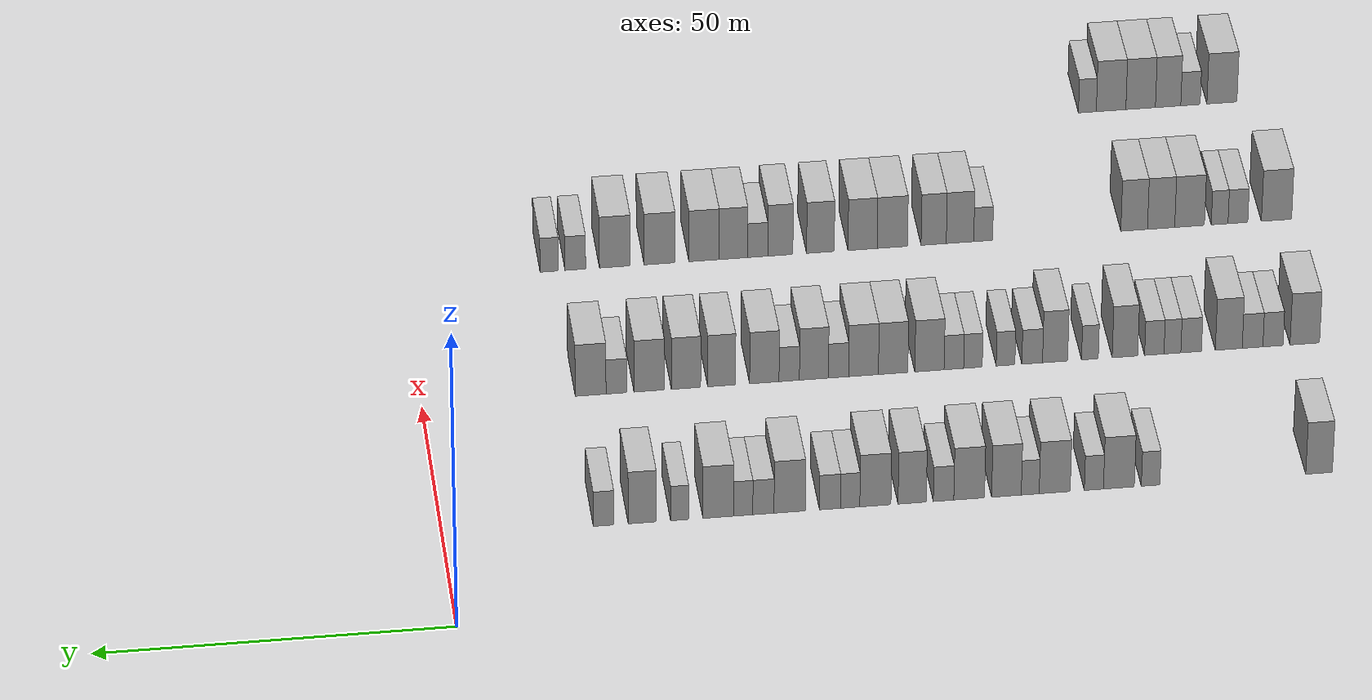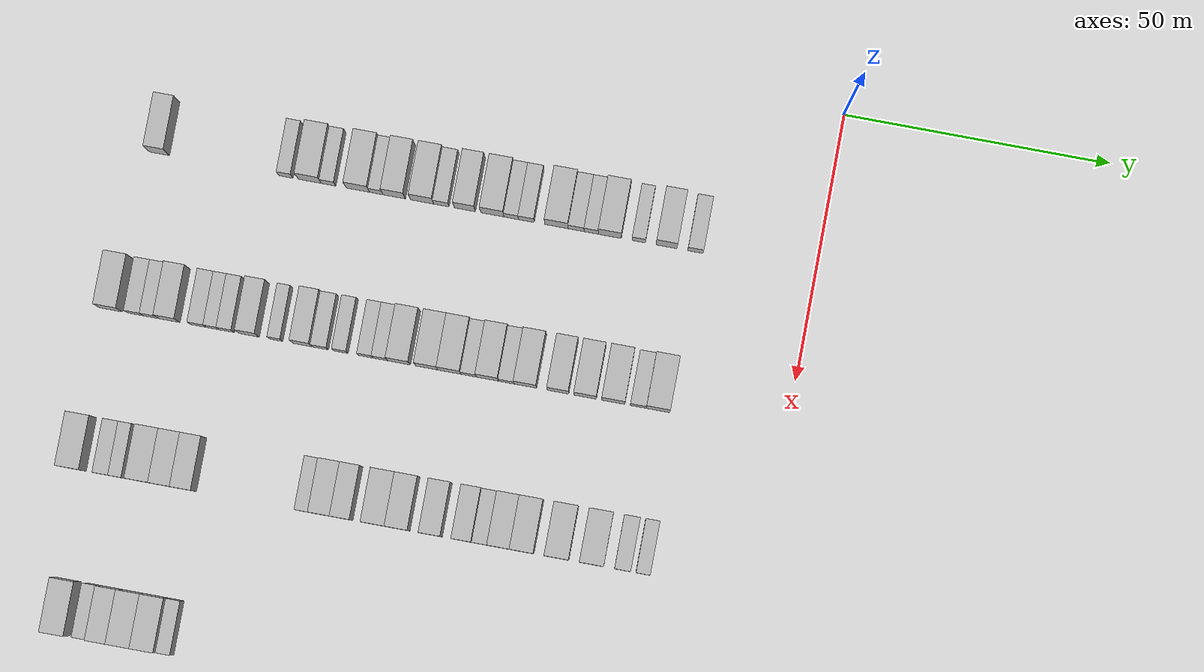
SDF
<sdf version="1.6">
 <world name="default">
  <model name="building_88">
   <static>1</static>
   <pose>25.0000 -122.9435 0 0.000000 0.000000 0.000000</pose>
   <link name="link">
    <pose>0 0 4.50 0 0 0</pose>
    <collision name="collision"><geometry><box><size>10.0000 3.7589 9.0000</size></box></geometry></collision>
    <visual name="visual">
     <cast_shadows>0</cast_shadows>
     <geometry><box><size>10.0000 3.7589 9.0000</size></box></geometry>
     <material>
      <script>
       <uri>model://HANNAS_wall/materials/scripts</uri>
       <uri>model://HANNAS_wall/materials/textures</uri>
       <name>vrc/HANNAS_wall</name>
      </script>
     </material>
    </visual>
   </link>
  </model>
  <model name="building_89">
   <static>1</static>
   <pose>25.0000 -99.1416 0 0.000000 0.000000 0.000000</pose>
   <link name="link">
    <pose>0 0 3.00 0 0 0</pose>
    <collision name="collision"><geometry><box><size>10.0000 2.6150 6.0000</size></box></geometry></collision>
    <visual name="visual">
     <cast_shadows>0</cast_shadows>
     <geometry><box><size>10.0000 2.6150 6.0000</size></box></geometry>
     <material>
      <script>
       <uri>model://HANNAS_wall/materials/scripts</uri>
       <uri>model://HANNAS_wall/materials/textures</uri>
       <name>vrc/HANNAS_wall</name>
      </script>
     </material>
    </visual>
   </link>
  </model>
  <model name="building_90">
   <static>1</static>
   <pose>25.0000 -94.6599 0 0.000000 0.000000 0.000000</pose>
   <link name="link">
    <pose>0 0 4.50 0 0 0</pose>
    <collision name="collision"><geometry><box><size>10.0000 4.3484 9.0000</size></box></geometry></collision>
    <visual name="visual">
     <cast_shadows>0</cast_shadows>
     <geometry><box><size>10.0000 4.3484 9.0000</size></box></geometry>
     <material>
      <script>
       <uri>model://HANNAS_wall/materials/scripts</uri>
       <uri>model://HANNAS_wall/materials/textures</uri>
       <name>vrc/HANNAS_wall</name>
      </script>
     </material>
    </visual>
   </link>
  </model>
  <model name="building_91">
   <static>1</static>
   <pose>25.0000 -91.1423 0 0.000000 0.000000 0.000000</pose>
   <link name="link">
    <pose>0 0 3.00 0 0 0</pose>
    <collision name="collision"><geometry><box><size>10.0000 2.6867 6.0000</size></box></geometry></collision>
    <visual name="visual">
     <cast_shadows>0</cast_shadows>
     <geometry><box><size>10.0000 2.6867 6.0000</size></box></geometry>
     <material>
      <script>
       <uri>model://HANNAS_wall/materials/scripts</uri>
       <uri>model://HANNAS_wall/materials/textures</uri>
       <name>vrc/HANNAS_wall</name>
      </script>
     </material>
    </visual>
   </link>
  </model>
  <model name="building_92">
   <static>1</static>
   <pose>25.0000 -85.6182 0 0.000000 0.000000 0.000000</pose>
   <link name="link">
    <pose>0 0 4.50 0 0 0</pose>
    <collision name="collision"><geometry><box><size>10.0000 4.3616 9.0000</size></box></geometry></collision>
    <visual name="visual">
     <cast_shadows>0</cast_shadows>
     <geometry><box><size>10.0000 4.3616 9.0000</size></box></geometry>
     <material>
      <script>
       <uri>model://HANNAS_wall/materials/scripts</uri>
       <uri>model://HANNAS_wall/materials/textures</uri>
       <name>vrc/HANNAS_wall</name>
      </script>
     </material>
    </visual>
   </link>
  </model>
  <model name="building_93">
   <static>1</static>
   <pose>25.0000 -82.1745 0 0.000000 0.000000 0.000000</pose>
   <link name="link">
    <pose>0 0 3.00 0 0 0</pose>
    <collision name="collision"><geometry><box><size>10.0000 2.5257 6.0000</size></box></geometry></collision>
    <visual name="visual">
     <cast_shadows>0</cast_shadows>
     <geometry><box><size>10.0000 2.5257 6.0000</size></box></geometry>
     <material>
      <script>
       <uri>model://HANNAS_wall/materials/scripts</uri>
       <uri>model://HANNAS_wall/materials/textures</uri>
       <name>vrc/HANNAS_wall</name>
      </script>
     </material>
    </visual>
   </link>
  </model>
  <model name="building_94">
   <static>1</static>
   <pose>25.0000 -78.8266 0 0.000000 0.000000 0.000000</pose>
   <link name="link">
    <pose>0 0 4.50 0 0 0</pose>
    <collision name="collision"><geometry><box><size>10.0000 4.1699 9.0000</size></box></geometry></collision>
    <visual name="visual">
     <cast_shadows>0</cast_shadows>
     <geometry><box><size>10.0000 4.1699 9.0000</size></box></geometry>
     <material>
      <script>
       <uri>model://HANNAS_wall/materials/scripts</uri>
       <uri>model://HANNAS_wall/materials/textures</uri>
       <name>vrc/HANNAS_wall</name>
      </script>
     </material>
    </visual>
   </link>
  </model>
  <model name="building_95">
   <static>1</static>
   <pose>25.0000 -73.5830 0 0.000000 0.000000 0.000000</pose>
   <link name="link">
    <pose>0 0 4.50 0 0 0</pose>
    <collision name="collision"><geometry><box><size>10.0000 4.3174 9.0000</size></box></geometry></collision>
    <visual name="visual">
     <cast_shadows>0</cast_shadows>
     <geometry><box><size>10.0000 4.3174 9.0000</size></box></geometry>
     <material>
      <script>
       <uri>model://HANNAS_wall/materials/scripts</uri>
       <uri>model://HANNAS_wall/materials/textures</uri>
       <name>vrc/HANNAS_wall</name>
      </script>
     </material>
    </visual>
   </link>
  </model>
  <model name="building_96">
   <static>1</static>
   <pose>25.0000 -69.9888 0 0.000000 0.000000 0.000000</pose>
   <link name="link">
    <pose>0 0 3.00 0 0 0</pose>
    <collision name="collision"><geometry><box><size>10.0000 2.8709 6.0000</size></box></geometry></collision>
    <visual name="visual">
     <cast_shadows>0</cast_shadows>
     <geometry><box><size>10.0000 2.8709 6.0000</size></box></geometry>
     <material>
      <script>
       <uri>model://HANNAS_wall/materials/scripts</uri>
       <uri>model://HANNAS_wall/materials/textures</uri>
       <name>vrc/HANNAS_wall</name>
      </script>
     </material>
    </visual>
   </link>
  </model>
  <model name="building_97">
   <static>1</static>
   <pose>25.0000 -65.5754 0 0.000000 0.000000 0.000000</pose>
   <link name="link">
    <pose>0 0 4.50 0 0 0</pose>
    <collision name="collision"><geometry><box><size>10.0000 3.9560 9.0000</size></box></geometry></collision>
    <visual name="visual">
     <cast_shadows>0</cast_shadows>
     <geometry><box><size>10.0000 3.9560 9.0000</size></box></geometry>
     <material>
      <script>
       <uri>model://HANNAS_wall/materials/scripts</uri>
       <uri>model://HANNAS_wall/materials/textures</uri>
       <name>vrc/HANNAS_wall</name>
      </script>
     </material>
    </visual>
   </link>
  </model>
  <model name="building_98">
   <static>1</static>
   <pose>25.0000 -60.4146 0 0.000000 0.000000 0.000000</pose>
   <link name="link">
    <pose>0 0 4.50 0 0 0</pose>
    <collision name="collision"><geometry><box><size>10.0000 4.3657 9.0000</size></box></geometry></collision>
    <visual name="visual">
     <cast_shadows>0</cast_shadows>
     <geometry><box><size>10.0000 4.3657 9.0000</size></box></geometry>
     <material>
      <script>
       <uri>model://HANNAS_wall/materials/scripts</uri>
       <uri>model://HANNAS_wall/materials/textures</uri>
       <name>vrc/HANNAS_wall</name>
      </script>
     </material>
    </visual>
   </link>
  </model>
  <model name="building_99">
   <static>1</static>
   <pose>25.0000 -56.8833 0 0.000000 0.000000 0.000000</pose>
   <link name="link">
    <pose>0 0 3.00 0 0 0</pose>
    <collision name="collision"><geometry><box><size>10.0000 2.6968 6.0000</size></box></geometry></collision>
    <visual name="visual">
     <cast_shadows>0</cast_shadows>
     <geometry><box><size>10.0000 2.6968 6.0000</size></box></geometry>
     <material>
      <script>
       <uri>model://HANNAS_wall/materials/scripts</uri>
       <uri>model://HANNAS_wall/materials/textures</uri>
       <name>vrc/HANNAS_wall</name>
      </script>
     </material>
    </visual>
   </link>
  </model>
  <model name="building_100">
   <static>1</static>
   <pose>25.0000 -54.0627 0 0.000000 0.000000 0.000000</pose>
   <link name="link">
    <pose>0 0 3.00 0 0 0</pose>
    <collision name="collision"><geometry><box><size>10.0000 2.9444 6.0000</size></box></geometry></collision>
    <visual name="visual">
     <cast_shadows>0</cast_shadows>
     <geometry><box><size>10.0000 2.9444 6.0000</size></box></geometry>
     <material>
      <script>
       <uri>model://HANNAS_wall/materials/scripts</uri>
       <uri>model://HANNAS_wall/materials/textures</uri>
       <name>vrc/HANNAS_wall</name>
      </script>
     </material>
    </visual>
   </link>
  </model>
  <model name="building_101">
   <static>1</static>
   <pose>25.0000 -48.4045 0 0.000000 0.000000 0.000000</pose>
   <link name="link">
    <pose>0 0 4.50 0 0 0</pose>
    <collision name="collision"><geometry><box><size>10.0000 4.3722 9.0000</size></box></geometry></collision>
    <visual name="visual">
     <cast_shadows>0</cast_shadows>
     <geometry><box><size>10.0000 4.3722 9.0000</size></box></geometry>
     <material>
      <script>
       <uri>model://HANNAS_wall/materials/scripts</uri>
       <uri>model://HANNAS_wall/materials/textures</uri>
       <name>vrc/HANNAS_wall</name>
      </script>
     </material>
    </visual>
   </link>
  </model>
  <model name="building_102">
   <static>1</static>
   <pose>25.0000 -44.7349 0 0.000000 0.000000 0.000000</pose>
   <link name="link">
    <pose>0 0 3.00 0 0 0</pose>
    <collision name="collision"><geometry><box><size>10.0000 2.9670 6.0000</size></box></geometry></collision>
    <visual name="visual">
     <cast_shadows>0</cast_shadows>
     <geometry><box><size>10.0000 2.9670 6.0000</size></box></geometry>
     <material>
      <script>
       <uri>model://HANNAS_wall/materials/scripts</uri>
       <uri>model://HANNAS_wall/materials/textures</uri>
       <name>vrc/HANNAS_wall</name>
      </script>
     </material>
    </visual>
   </link>
  </model>
  <model name="building_103">
   <static>1</static>
   <pose>25.0000 -41.9205 0 0.000000 0.000000 0.000000</pose>
   <link name="link">
    <pose>0 0 3.00 0 0 0</pose>
    <collision name="collision"><geometry><box><size>10.0000 2.6617 6.0000</size></box></geometry></collision>
    <visual name="visual">
     <cast_shadows>0</cast_shadows>
     <geometry><box><size>10.0000 2.6617 6.0000</size></box></geometry>
     <material>
      <script>
       <uri>model://HANNAS_wall/materials/scripts</uri>
       <uri>model://HANNAS_wall/materials/textures</uri>
       <name>vrc/HANNAS_wall</name>
      </script>
     </material>
    </visual>
   </link>
  </model>
  <model name="building_104">
   <static>1</static>
   <pose>25.0000 -38.4325 0 0.000000 0.000000 0.000000</pose>
   <link name="link">
    <pose>0 0 4.50 0 0 0</pose>
    <collision name="collision"><geometry><box><size>10.0000 4.3142 9.0000</size></box></geometry></collision>
    <visual name="visual">
     <cast_shadows>0</cast_shadows>
     <geometry><box><size>10.0000 4.3142 9.0000</size></box></geometry>
     <material>
      <script>
       <uri>model://HANNAS_wall/materials/scripts</uri>
       <uri>model://HANNAS_wall/materials/textures</uri>
       <name>vrc/HANNAS_wall</name>
      </script>
     </material>
    </visual>
   </link>
  </model>
  <model name="building_105">
   <static>1</static>
   <pose>25.0000 -33.0181 0 0.000000 0.000000 0.000000</pose>
   <link name="link">
    <pose>0 0 3.00 0 0 0</pose>
    <collision name="collision"><geometry><box><size>10.0000 2.5146 6.0000</size></box></geometry></collision>
    <visual name="visual">
     <cast_shadows>0</cast_shadows>
     <geometry><box><size>10.0000 2.5146 6.0000</size></box></geometry>
     <material>
      <script>
       <uri>model://HANNAS_wall/materials/scripts</uri>
       <uri>model://HANNAS_wall/materials/textures</uri>
       <name>vrc/HANNAS_wall</name>
      </script>
     </material>
    </visual>
   </link>
  </model>
  <model name="building_106">
   <static>1</static>
   <pose>25.0000 -27.7983 0 0.000000 0.000000 0.000000</pose>
   <link name="link">
    <pose>0 0 4.50 0 0 0</pose>
    <collision name="collision"><geometry><box><size>10.0000 3.9252 9.0000</size></box></geometry></collision>
    <visual name="visual">
     <cast_shadows>0</cast_shadows>
     <geometry><box><size>10.0000 3.9252 9.0000</size></box></geometry>
     <material>
      <script>
       <uri>model://HANNAS_wall/materials/scripts</uri>
       <uri>model://HANNAS_wall/materials/textures</uri>
       <name>vrc/HANNAS_wall</name>
      </script>
     </material>
    </visual>
   </link>
  </model>
  <model name="building_107">
   <static>1</static>
   <pose>25.0000 -22.4009 0 0.000000 0.000000 0.000000</pose>
   <link name="link">
    <pose>0 0 3.00 0 0 0</pose>
    <collision name="collision"><geometry><box><size>10.0000 2.8695 6.0000</size></box></geometry></collision>
    <visual name="visual">
     <cast_shadows>0</cast_shadows>
     <geometry><box><size>10.0000 2.8695 6.0000</size></box></geometry>
     <material>
      <script>
       <uri>model://HANNAS_wall/materials/scripts</uri>
       <uri>model://HANNAS_wall/materials/textures</uri>
       <name>vrc/HANNAS_wall</name>
      </script>
     </material>
    </visual>
   </link>
  </model>
  <model name="building_302">
   <static>1</static>
   <pose>55.0000 -126.1772 0 0.000000 0.000000 0.000000</pose>
   <link name="link">
    <pose>0 0 4.50 0 0 0</pose>
    <collision name="collision"><geometry><box><size>10.0000 4.2610 9.0000</size></box></geometry></collision>
    <visual name="visual">
     <cast_shadows>0</cast_shadows>
     <geometry><box><size>10.0000 4.2610 9.0000</size></box></geometry>
     <material>
      <script>
       <uri>model://HANNAS_wall/materials/scripts</uri>
       <uri>model://HANNAS_wall/materials/textures</uri>
       <name>vrc/HANNAS_wall</name>
      </script>
     </material>
    </visual>
   </link>
  </model>
  <model name="building_303">
   <static>1</static>
   <pose>55.0000 -121.5906 0 0.000000 0.000000 0.000000</pose>
   <link name="link">
    <pose>0 0 3.00 0 0 0</pose>
    <collision name="collision"><geometry><box><size>10.0000 2.9123 6.0000</size></box></geometry></collision>
    <visual name="visual">
     <cast_shadows>0</cast_shadows>
     <geometry><box><size>10.0000 2.9123 6.0000</size></box></geometry>
     <material>
      <script>
       <uri>model://HANNAS_wall/materials/scripts</uri>
       <uri>model://HANNAS_wall/materials/textures</uri>
       <name>vrc/HANNAS_wall</name>
      </script>
     </material>
    </visual>
   </link>
  </model>
  <model name="building_304">
   <static>1</static>
   <pose>55.0000 -118.6437 0 0.000000 0.000000 0.000000</pose>
   <link name="link">
    <pose>0 0 3.00 0 0 0</pose>
    <collision name="collision"><geometry><box><size>10.0000 2.9813 6.0000</size></box></geometry></collision>
    <visual name="visual">
     <cast_shadows>0</cast_shadows>
     <geometry><box><size>10.0000 2.9813 6.0000</size></box></geometry>
     <material>
      <script>
       <uri>model://HANNAS_wall/materials/scripts</uri>
       <uri>model://HANNAS_wall/materials/textures</uri>
       <name>vrc/HANNAS_wall</name>
      </script>
     </material>
    </visual>
   </link>
  </model>
  <model name="building_305">
   <static>1</static>
   <pose>55.0000 -115.2179 0 0.000000 0.000000 0.000000</pose>
   <link name="link">
    <pose>0 0 4.50 0 0 0</pose>
    <collision name="collision"><geometry><box><size>10.0000 3.8702 9.0000</size></box></geometry></collision>
    <visual name="visual">
     <cast_shadows>0</cast_shadows>
     <geometry><box><size>10.0000 3.8702 9.0000</size></box></geometry>
     <material>
      <script>
       <uri>model://HANNAS_wall/materials/scripts</uri>
       <uri>model://HANNAS_wall/materials/textures</uri>
       <name>vrc/HANNAS_wall</name>
      </script>
     </material>
    </visual>
   </link>
  </model>
  <model name="building_306">
   <static>1</static>
   <pose>55.0000 -109.8008 0 0.000000 0.000000 0.000000</pose>
   <link name="link">
    <pose>0 0 3.00 0 0 0</pose>
    <collision name="collision"><geometry><box><size>10.0000 2.9640 6.0000</size></box></geometry></collision>
    <visual name="visual">
     <cast_shadows>0</cast_shadows>
     <geometry><box><size>10.0000 2.9640 6.0000</size></box></geometry>
     <material>
      <script>
       <uri>model://HANNAS_wall/materials/scripts</uri>
       <uri>model://HANNAS_wall/materials/textures</uri>
       <name>vrc/HANNAS_wall</name>
      </script>
     </material>
    </visual>
   </link>
  </model>
  <model name="building_307">
   <static>1</static>
   <pose>55.0000 -107.1058 0 0.000000 0.000000 0.000000</pose>
   <link name="link">
    <pose>0 0 3.00 0 0 0</pose>
    <collision name="collision"><geometry><box><size>10.0000 2.4261 6.0000</size></box></geometry></collision>
    <visual name="visual">
     <cast_shadows>0</cast_shadows>
     <geometry><box><size>10.0000 2.4261 6.0000</size></box></geometry>
     <material>
      <script>
       <uri>model://HANNAS_wall/materials/scripts</uri>
       <uri>model://HANNAS_wall/materials/textures</uri>
       <name>vrc/HANNAS_wall</name>
      </script>
     </material>
    </visual>
   </link>
  </model>
  <model name="building_308">
   <static>1</static>
   <pose>55.0000 -104.5015 0 0.000000 0.000000 0.000000</pose>
   <link name="link">
    <pose>0 0 3.00 0 0 0</pose>
    <collision name="collision"><geometry><box><size>10.0000 2.7825 6.0000</size></box></geometry></collision>
    <visual name="visual">
     <cast_shadows>0</cast_shadows>
     <geometry><box><size>10.0000 2.7825 6.0000</size></box></geometry>
     <material>
      <script>
       <uri>model://HANNAS_wall/materials/scripts</uri>
       <uri>model://HANNAS_wall/materials/textures</uri>
       <name>vrc/HANNAS_wall</name>
      </script>
     </material>
    </visual>
   </link>
  </model>
  <model name="building_309">
   <static>1</static>
   <pose>55.0000 -100.2788 0 0.000000 0.000000 0.000000</pose>
   <link name="link">
    <pose>0 0 4.50 0 0 0</pose>
    <collision name="collision"><geometry><box><size>10.0000 3.6630 9.0000</size></box></geometry></collision>
    <visual name="visual">
     <cast_shadows>0</cast_shadows>
     <geometry><box><size>10.0000 3.6630 9.0000</size></box></geometry>
     <material>
      <script>
       <uri>model://HANNAS_wall/materials/scripts</uri>
       <uri>model://HANNAS_wall/materials/textures</uri>
       <name>vrc/HANNAS_wall</name>
      </script>
     </material>
    </visual>
   </link>
  </model>
  <model name="building_310">
   <static>1</static>
   <pose>55.0000 -95.2465 0 0.000000 0.000000 0.000000</pose>
   <link name="link">
    <pose>0 0 3.00 0 0 0</pose>
    <collision name="collision"><geometry><box><size>10.0000 2.4015 6.0000</size></box></geometry></collision>
    <visual name="visual">
     <cast_shadows>0</cast_shadows>
     <geometry><box><size>10.0000 2.4015 6.0000</size></box></geometry>
     <material>
      <script>
       <uri>model://HANNAS_wall/materials/scripts</uri>
       <uri>model://HANNAS_wall/materials/textures</uri>
       <name>vrc/HANNAS_wall</name>
      </script>
     </material>
    </visual>
   </link>
  </model>
  <model name="building_311">
   <static>1</static>
   <pose>55.0000 -90.2434 0 0.000000 0.000000 0.000000</pose>
   <link name="link">
    <pose>0 0 4.50 0 0 0</pose>
    <collision name="collision"><geometry><box><size>10.0000 3.6049 9.0000</size></box></geometry></collision>
    <visual name="visual">
     <cast_shadows>0</cast_shadows>
     <geometry><box><size>10.0000 3.6049 9.0000</size></box></geometry>
     <material>
      <script>
       <uri>model://HANNAS_wall/materials/scripts</uri>
       <uri>model://HANNAS_wall/materials/textures</uri>
       <name>vrc/HANNAS_wall</name>
      </script>
     </material>
    </visual>
   </link>
  </model>
  <model name="building_312">
   <static>1</static>
   <pose>55.0000 -86.9605 0 0.000000 0.000000 0.000000</pose>
   <link name="link">
    <pose>0 0 3.00 0 0 0</pose>
    <collision name="collision"><geometry><box><size>10.0000 2.9609 6.0000</size></box></geometry></collision>
    <visual name="visual">
     <cast_shadows>0</cast_shadows>
     <geometry><box><size>10.0000 2.9609 6.0000</size></box></geometry>
     <material>
      <script>
       <uri>model://HANNAS_wall/materials/scripts</uri>
       <uri>model://HANNAS_wall/materials/textures</uri>
       <name>vrc/HANNAS_wall</name>
      </script>
     </material>
    </visual>
   </link>
  </model>
  <model name="building_313">
   <static>1</static>
   <pose>55.0000 -83.1413 0 0.000000 0.000000 0.000000</pose>
   <link name="link">
    <pose>0 0 3.00 0 0 0</pose>
    <collision name="collision"><geometry><box><size>10.0000 2.6775 6.0000</size></box></geometry></collision>
    <visual name="visual">
     <cast_shadows>0</cast_shadows>
     <geometry><box><size>10.0000 2.6775 6.0000</size></box></geometry>
     <material>
      <script>
       <uri>model://HANNAS_wall/materials/scripts</uri>
       <uri>model://HANNAS_wall/materials/textures</uri>
       <name>vrc/HANNAS_wall</name>
      </script>
     </material>
    </visual>
   </link>
  </model>
  <model name="building_314">
   <static>1</static>
   <pose>55.0000 -78.4706 0 0.000000 0.000000 0.000000</pose>
   <link name="link">
    <pose>0 0 3.00 0 0 0</pose>
    <collision name="collision"><geometry><box><size>10.0000 2.6639 6.0000</size></box></geometry></collision>
    <visual name="visual">
     <cast_shadows>0</cast_shadows>
     <geometry><box><size>10.0000 2.6639 6.0000</size></box></geometry>
     <material>
      <script>
       <uri>model://HANNAS_wall/materials/scripts</uri>
       <uri>model://HANNAS_wall/materials/textures</uri>
       <name>vrc/HANNAS_wall</name>
      </script>
     </material>
    </visual>
   </link>
  </model>
  <model name="building_315">
   <static>1</static>
   <pose>55.0000 -75.7348 0 0.000000 0.000000 0.000000</pose>
   <link name="link">
    <pose>0 0 3.00 0 0 0</pose>
    <collision name="collision"><geometry><box><size>10.0000 2.8076 6.0000</size></box></geometry></collision>
    <visual name="visual">
     <cast_shadows>0</cast_shadows>
     <geometry><box><size>10.0000 2.8076 6.0000</size></box></geometry>
     <material>
      <script>
       <uri>model://HANNAS_wall/materials/scripts</uri>
       <uri>model://HANNAS_wall/materials/textures</uri>
       <name>vrc/HANNAS_wall</name>
      </script>
     </material>
    </visual>
   </link>
  </model>
  <model name="building_316">
   <static>1</static>
   <pose>55.0000 -72.2374 0 0.000000 0.000000 0.000000</pose>
   <link name="link">
    <pose>0 0 4.50 0 0 0</pose>
    <collision name="collision"><geometry><box><size>10.0000 4.1872 9.0000</size></box></geometry></collision>
    <visual name="visual">
     <cast_shadows>0</cast_shadows>
     <geometry><box><size>10.0000 4.1872 9.0000</size></box></geometry>
     <material>
      <script>
       <uri>model://HANNAS_wall/materials/scripts</uri>
       <uri>model://HANNAS_wall/materials/textures</uri>
       <name>vrc/HANNAS_wall</name>
      </script>
     </material>
    </visual>
   </link>
  </model>
  <model name="building_317">
   <static>1</static>
   <pose>55.0000 -67.0415 0 0.000000 0.000000 0.000000</pose>
   <link name="link">
    <pose>0 0 4.50 0 0 0</pose>
    <collision name="collision"><geometry><box><size>10.0000 4.2046 9.0000</size></box></geometry></collision>
    <visual name="visual">
     <cast_shadows>0</cast_shadows>
     <geometry><box><size>10.0000 4.2046 9.0000</size></box></geometry>
     <material>
      <script>
       <uri>model://HANNAS_wall/materials/scripts</uri>
       <uri>model://HANNAS_wall/materials/textures</uri>
       <name>vrc/HANNAS_wall</name>
      </script>
     </material>
    </visual>
   </link>
  </model>
  <model name="building_318">
   <static>1</static>
   <pose>55.0000 -62.8037 0 0.000000 0.000000 0.000000</pose>
   <link name="link">
    <pose>0 0 4.50 0 0 0</pose>
    <collision name="collision"><geometry><box><size>10.0000 4.2711 9.0000</size></box></geometry></collision>
    <visual name="visual">
     <cast_shadows>0</cast_shadows>
     <geometry><box><size>10.0000 4.2711 9.0000</size></box></geometry>
     <material>
      <script>
       <uri>model://HANNAS_wall/materials/scripts</uri>
       <uri>model://HANNAS_wall/materials/textures</uri>
       <name>vrc/HANNAS_wall</name>
      </script>
     </material>
    </visual>
   </link>
  </model>
  <model name="building_319">
   <static>1</static>
   <pose>55.0000 -59.2322 0 0.000000 0.000000 0.000000</pose>
   <link name="link">
    <pose>0 0 3.00 0 0 0</pose>
    <collision name="collision"><geometry><box><size>10.0000 2.8719 6.0000</size></box></geometry></collision>
    <visual name="visual">
     <cast_shadows>0</cast_shadows>
     <geometry><box><size>10.0000 2.8719 6.0000</size></box></geometry>
     <material>
      <script>
       <uri>model://HANNAS_wall/materials/scripts</uri>
       <uri>model://HANNAS_wall/materials/textures</uri>
       <name>vrc/HANNAS_wall</name>
      </script>
     </material>
    </visual>
   </link>
  </model>
  <model name="building_320">
   <static>1</static>
   <pose>55.0000 -55.7255 0 0.000000 0.000000 0.000000</pose>
   <link name="link">
    <pose>0 0 4.50 0 0 0</pose>
    <collision name="collision"><geometry><box><size>10.0000 4.1416 9.0000</size></box></geometry></collision>
    <visual name="visual">
     <cast_shadows>0</cast_shadows>
     <geometry><box><size>10.0000 4.1416 9.0000</size></box></geometry>
     <material>
      <script>
       <uri>model://HANNAS_wall/materials/scripts</uri>
       <uri>model://HANNAS_wall/materials/textures</uri>
       <name>vrc/HANNAS_wall</name>
      </script>
     </material>
    </visual>
   </link>
  </model>
  <model name="building_321">
   <static>1</static>
   <pose>55.0000 -52.1995 0 0.000000 0.000000 0.000000</pose>
   <link name="link">
    <pose>0 0 3.00 0 0 0</pose>
    <collision name="collision"><geometry><box><size>10.0000 2.9104 6.0000</size></box></geometry></collision>
    <visual name="visual">
     <cast_shadows>0</cast_shadows>
     <geometry><box><size>10.0000 2.9104 6.0000</size></box></geometry>
     <material>
      <script>
       <uri>model://HANNAS_wall/materials/scripts</uri>
       <uri>model://HANNAS_wall/materials/textures</uri>
       <name>vrc/HANNAS_wall</name>
      </script>
     </material>
    </visual>
   </link>
  </model>
  <model name="building_322">
   <static>1</static>
   <pose>55.0000 -48.6486 0 0.000000 0.000000 0.000000</pose>
   <link name="link">
    <pose>0 0 4.50 0 0 0</pose>
    <collision name="collision"><geometry><box><size>10.0000 4.1912 9.0000</size></box></geometry></collision>
    <visual name="visual">
     <cast_shadows>0</cast_shadows>
     <geometry><box><size>10.0000 4.1912 9.0000</size></box></geometry>
     <material>
      <script>
       <uri>model://HANNAS_wall/materials/scripts</uri>
       <uri>model://HANNAS_wall/materials/textures</uri>
       <name>vrc/HANNAS_wall</name>
      </script>
     </material>
    </visual>
   </link>
  </model>
  <model name="building_323">
   <static>1</static>
   <pose>55.0000 -42.5649 0 0.000000 0.000000 0.000000</pose>
   <link name="link">
    <pose>0 0 4.50 0 0 0</pose>
    <collision name="collision"><geometry><box><size>10.0000 3.9762 9.0000</size></box></geometry></collision>
    <visual name="visual">
     <cast_shadows>0</cast_shadows>
     <geometry><box><size>10.0000 3.9762 9.0000</size></box></geometry>
     <material>
      <script>
       <uri>model://HANNAS_wall/materials/scripts</uri>
       <uri>model://HANNAS_wall/materials/textures</uri>
       <name>vrc/HANNAS_wall</name>
      </script>
     </material>
    </visual>
   </link>
  </model>
  <model name="building_324">
   <static>1</static>
   <pose>55.0000 -37.4912 0 0.000000 0.000000 0.000000</pose>
   <link name="link">
    <pose>0 0 4.50 0 0 0</pose>
    <collision name="collision"><geometry><box><size>10.0000 4.1710 9.0000</size></box></geometry></collision>
    <visual name="visual">
     <cast_shadows>0</cast_shadows>
     <geometry><box><size>10.0000 4.1710 9.0000</size></box></geometry>
     <material>
      <script>
       <uri>model://HANNAS_wall/materials/scripts</uri>
       <uri>model://HANNAS_wall/materials/textures</uri>
       <name>vrc/HANNAS_wall</name>
      </script>
     </material>
    </visual>
   </link>
  </model>
  <model name="building_325">
   <static>1</static>
   <pose>55.0000 -32.2473 0 0.000000 0.000000 0.000000</pose>
   <link name="link">
    <pose>0 0 4.50 0 0 0</pose>
    <collision name="collision"><geometry><box><size>10.0000 4.3169 9.0000</size></box></geometry></collision>
    <visual name="visual">
     <cast_shadows>0</cast_shadows>
     <geometry><box><size>10.0000 4.3169 9.0000</size></box></geometry>
     <material>
      <script>
       <uri>model://HANNAS_wall/materials/scripts</uri>
       <uri>model://HANNAS_wall/materials/textures</uri>
       <name>vrc/HANNAS_wall</name>
      </script>
     </material>
    </visual>
   </link>
  </model>
  <model name="building_326">
   <static>1</static>
   <pose>55.0000 -27.5980 0 0.000000 0.000000 0.000000</pose>
   <link name="link">
    <pose>0 0 3.00 0 0 0</pose>
    <collision name="collision"><geometry><box><size>10.0000 2.9817 6.0000</size></box></geometry></collision>
    <visual name="visual">
     <cast_shadows>0</cast_shadows>
     <geometry><box><size>10.0000 2.9817 6.0000</size></box></geometry>
     <material>
      <script>
       <uri>model://HANNAS_wall/materials/scripts</uri>
       <uri>model://HANNAS_wall/materials/textures</uri>
       <name>vrc/HANNAS_wall</name>
      </script>
     </material>
    </visual>
   </link>
  </model>
  <model name="building_327">
   <static>1</static>
   <pose>55.0000 -23.9201 0 0.000000 0.000000 0.000000</pose>
   <link name="link">
    <pose>0 0 4.50 0 0 0</pose>
    <collision name="collision"><geometry><box><size>10.0000 4.3741 9.0000</size></box></geometry></collision>
    <visual name="visual">
     <cast_shadows>0</cast_shadows>
     <geometry><box><size>10.0000 4.3741 9.0000</size></box></geometry>
     <material>
      <script>
       <uri>model://HANNAS_wall/materials/scripts</uri>
       <uri>model://HANNAS_wall/materials/textures</uri>
       <name>vrc/HANNAS_wall</name>
      </script>
     </material>
    </visual>
   </link>
  </model>
  <model name="building_533">
   <static>1</static>
   <pose>85.0000 -127.2731 0 0.000000 0.000000 0.000000</pose>
   <link name="link">
    <pose>0 0 4.50 0 0 0</pose>
    <collision name="collision"><geometry><box><size>10.0000 4.4331 9.0000</size></box></geometry></collision>
    <visual name="visual">
     <cast_shadows>0</cast_shadows>
     <geometry><box><size>10.0000 4.4331 9.0000</size></box></geometry>
     <material>
      <script>
       <uri>model://HANNAS_wall/materials/scripts</uri>
       <uri>model://HANNAS_wall/materials/textures</uri>
       <name>vrc/HANNAS_wall</name>
      </script>
     </material>
    </visual>
   </link>
  </model>
  <model name="building_534">
   <static>1</static>
   <pose>85.0000 -121.6051 0 0.000000 0.000000 0.000000</pose>
   <link name="link">
    <pose>0 0 3.00 0 0 0</pose>
    <collision name="collision"><geometry><box><size>10.0000 2.9029 6.0000</size></box></geometry></collision>
    <visual name="visual">
     <cast_shadows>0</cast_shadows>
     <geometry><box><size>10.0000 2.9029 6.0000</size></box></geometry>
     <material>
      <script>
       <uri>model://HANNAS_wall/materials/scripts</uri>
       <uri>model://HANNAS_wall/materials/textures</uri>
       <name>vrc/HANNAS_wall</name>
      </script>
     </material>
    </visual>
   </link>
  </model>
  <model name="building_535">
   <static>1</static>
   <pose>85.0000 -118.9237 0 0.000000 0.000000 0.000000</pose>
   <link name="link">
    <pose>0 0 3.00 0 0 0</pose>
    <collision name="collision"><geometry><box><size>10.0000 2.4599 6.0000</size></box></geometry></collision>
    <visual name="visual">
     <cast_shadows>0</cast_shadows>
     <geometry><box><size>10.0000 2.4599 6.0000</size></box></geometry>
     <material>
      <script>
       <uri>model://HANNAS_wall/materials/scripts</uri>
       <uri>model://HANNAS_wall/materials/textures</uri>
       <name>vrc/HANNAS_wall</name>
      </script>
     </material>
    </visual>
   </link>
  </model>
  <model name="building_536">
   <static>1</static>
   <pose>85.0000 -114.5156 0 0.000000 0.000000 0.000000</pose>
   <link name="link">
    <pose>0 0 4.50 0 0 0</pose>
    <collision name="collision"><geometry><box><size>10.0000 4.3563 9.0000</size></box></geometry></collision>
    <visual name="visual">
     <cast_shadows>0</cast_shadows>
     <geometry><box><size>10.0000 4.3563 9.0000</size></box></geometry>
     <material>
      <script>
       <uri>model://HANNAS_wall/materials/scripts</uri>
       <uri>model://HANNAS_wall/materials/textures</uri>
       <name>vrc/HANNAS_wall</name>
      </script>
     </material>
    </visual>
   </link>
  </model>
  <model name="building_537">
   <static>1</static>
   <pose>85.0000 -110.3409 0 0.000000 0.000000 0.000000</pose>
   <link name="link">
    <pose>0 0 4.50 0 0 0</pose>
    <collision name="collision"><geometry><box><size>10.0000 3.9931 9.0000</size></box></geometry></collision>
    <visual name="visual">
     <cast_shadows>0</cast_shadows>
     <geometry><box><size>10.0000 3.9931 9.0000</size></box></geometry>
     <material>
      <script>
       <uri>model://HANNAS_wall/materials/scripts</uri>
       <uri>model://HANNAS_wall/materials/textures</uri>
       <name>vrc/HANNAS_wall</name>
      </script>
     </material>
    </visual>
   </link>
  </model>
  <model name="building_538">
   <static>1</static>
   <pose>85.0000 -106.3953 0 0.000000 0.000000 0.000000</pose>
   <link name="link">
    <pose>0 0 4.50 0 0 0</pose>
    <collision name="collision"><geometry><box><size>10.0000 3.8982 9.0000</size></box></geometry></collision>
    <visual name="visual">
     <cast_shadows>0</cast_shadows>
     <geometry><box><size>10.0000 3.8982 9.0000</size></box></geometry>
     <material>
      <script>
       <uri>model://HANNAS_wall/materials/scripts</uri>
       <uri>model://HANNAS_wall/materials/textures</uri>
       <name>vrc/HANNAS_wall</name>
      </script>
     </material>
    </visual>
   </link>
  </model>
  <model name="building_539">
   <static>1</static>
   <pose>85.0000 -84.3141 0 0.000000 0.000000 0.000000</pose>
   <link name="link">
    <pose>0 0 3.00 0 0 0</pose>
    <collision name="collision"><geometry><box><size>10.0000 2.7547 6.0000</size></box></geometry></collision>
    <visual name="visual">
     <cast_shadows>0</cast_shadows>
     <geometry><box><size>10.0000 2.7547 6.0000</size></box></geometry>
     <material>
      <script>
       <uri>model://HANNAS_wall/materials/scripts</uri>
       <uri>model://HANNAS_wall/materials/textures</uri>
       <name>vrc/HANNAS_wall</name>
      </script>
     </material>
    </visual>
   </link>
  </model>
  <model name="building_540">
   <static>1</static>
   <pose>85.0000 -80.9327 0 0.000000 0.000000 0.000000</pose>
   <link name="link">
    <pose>0 0 4.50 0 0 0</pose>
    <collision name="collision"><geometry><box><size>10.0000 4.0079 9.0000</size></box></geometry></collision>
    <visual name="visual">
     <cast_shadows>0</cast_shadows>
     <geometry><box><size>10.0000 4.0079 9.0000</size></box></geometry>
     <material>
      <script>
       <uri>model://HANNAS_wall/materials/scripts</uri>
       <uri>model://HANNAS_wall/materials/textures</uri>
       <name>vrc/HANNAS_wall</name>
      </script>
     </material>
    </visual>
   </link>
  </model>
  <model name="building_541">
   <static>1</static>
   <pose>85.0000 -77.0943 0 0.000000 0.000000 0.000000</pose>
   <link name="link">
    <pose>0 0 4.50 0 0 0</pose>
    <collision name="collision"><geometry><box><size>10.0000 3.6689 9.0000</size></box></geometry></collision>
    <visual name="visual">
     <cast_shadows>0</cast_shadows>
     <geometry><box><size>10.0000 3.6689 9.0000</size></box></geometry>
     <material>
      <script>
       <uri>model://HANNAS_wall/materials/scripts</uri>
       <uri>model://HANNAS_wall/materials/textures</uri>
       <name>vrc/HANNAS_wall</name>
      </script>
     </material>
    </visual>
   </link>
  </model>
  <model name="building_542">
   <static>1</static>
   <pose>85.0000 -71.0563 0 0.000000 0.000000 0.000000</pose>
   <link name="link">
    <pose>0 0 4.50 0 0 0</pose>
    <collision name="collision"><geometry><box><size>10.0000 4.4071 9.0000</size></box></geometry></collision>
    <visual name="visual">
     <cast_shadows>0</cast_shadows>
     <geometry><box><size>10.0000 4.4071 9.0000</size></box></geometry>
     <material>
      <script>
       <uri>model://HANNAS_wall/materials/scripts</uri>
       <uri>model://HANNAS_wall/materials/textures</uri>
       <name>vrc/HANNAS_wall</name>
      </script>
     </material>
    </visual>
   </link>
  </model>
  <model name="building_543">
   <static>1</static>
   <pose>85.0000 -66.7316 0 0.000000 0.000000 0.000000</pose>
   <link name="link">
    <pose>0 0 4.50 0 0 0</pose>
    <collision name="collision"><geometry><box><size>10.0000 4.2423 9.0000</size></box></geometry></collision>
    <visual name="visual">
     <cast_shadows>0</cast_shadows>
     <geometry><box><size>10.0000 4.2423 9.0000</size></box></geometry>
     <material>
      <script>
       <uri>model://HANNAS_wall/materials/scripts</uri>
       <uri>model://HANNAS_wall/materials/textures</uri>
       <name>vrc/HANNAS_wall</name>
      </script>
     </material>
    </visual>
   </link>
  </model>
  <model name="building_544">
   <static>1</static>
   <pose>85.0000 -60.5984 0 0.000000 0.000000 0.000000</pose>
   <link name="link">
    <pose>0 0 4.50 0 0 0</pose>
    <collision name="collision"><geometry><box><size>10.0000 4.0242 9.0000</size></box></geometry></collision>
    <visual name="visual">
     <cast_shadows>0</cast_shadows>
     <geometry><box><size>10.0000 4.0242 9.0000</size></box></geometry>
     <material>
      <script>
       <uri>model://HANNAS_wall/materials/scripts</uri>
       <uri>model://HANNAS_wall/materials/textures</uri>
       <name>vrc/HANNAS_wall</name>
      </script>
     </material>
    </visual>
   </link>
  </model>
  <model name="building_545">
   <static>1</static>
   <pose>85.0000 -54.7593 0 0.000000 0.000000 0.000000</pose>
   <link name="link">
    <pose>0 0 4.50 0 0 0</pose>
    <collision name="collision"><geometry><box><size>10.0000 3.6540 9.0000</size></box></geometry></collision>
    <visual name="visual">
     <cast_shadows>0</cast_shadows>
     <geometry><box><size>10.0000 3.6540 9.0000</size></box></geometry>
     <material>
      <script>
       <uri>model://HANNAS_wall/materials/scripts</uri>
       <uri>model://HANNAS_wall/materials/textures</uri>
       <name>vrc/HANNAS_wall</name>
      </script>
     </material>
    </visual>
   </link>
  </model>
  <model name="building_546">
   <static>1</static>
   <pose>85.0000 -51.4777 0 0.000000 0.000000 0.000000</pose>
   <link name="link">
    <pose>0 0 3.00 0 0 0</pose>
    <collision name="collision"><geometry><box><size>10.0000 2.9093 6.0000</size></box></geometry></collision>
    <visual name="visual">
     <cast_shadows>0</cast_shadows>
     <geometry><box><size>10.0000 2.9093 6.0000</size></box></geometry>
     <material>
      <script>
       <uri>model://HANNAS_wall/materials/scripts</uri>
       <uri>model://HANNAS_wall/materials/textures</uri>
       <name>vrc/HANNAS_wall</name>
      </script>
     </material>
    </visual>
   </link>
  </model>
  <model name="building_547">
   <static>1</static>
   <pose>85.0000 -47.9533 0 0.000000 0.000000 0.000000</pose>
   <link name="link">
    <pose>0 0 4.50 0 0 0</pose>
    <collision name="collision"><geometry><box><size>10.0000 4.1394 9.0000</size></box></geometry></collision>
    <visual name="visual">
     <cast_shadows>0</cast_shadows>
     <geometry><box><size>10.0000 4.1394 9.0000</size></box></geometry>
     <material>
      <script>
       <uri>model://HANNAS_wall/materials/scripts</uri>
       <uri>model://HANNAS_wall/materials/textures</uri>
       <name>vrc/HANNAS_wall</name>
      </script>
     </material>
    </visual>
   </link>
  </model>
  <model name="building_548">
   <static>1</static>
   <pose>85.0000 -43.6897 0 0.000000 0.000000 0.000000</pose>
   <link name="link">
    <pose>0 0 4.50 0 0 0</pose>
    <collision name="collision"><geometry><box><size>10.0000 4.3877 9.0000</size></box></geometry></collision>
    <visual name="visual">
     <cast_shadows>0</cast_shadows>
     <geometry><box><size>10.0000 4.3877 9.0000</size></box></geometry>
     <material>
      <script>
       <uri>model://HANNAS_wall/materials/scripts</uri>
       <uri>model://HANNAS_wall/materials/textures</uri>
       <name>vrc/HANNAS_wall</name>
      </script>
     </material>
    </visual>
   </link>
  </model>
  <model name="building_549">
   <static>1</static>
   <pose>85.0000 -37.2493 0 0.000000 0.000000 0.000000</pose>
   <link name="link">
    <pose>0 0 4.50 0 0 0</pose>
    <collision name="collision"><geometry><box><size>10.0000 4.4932 9.0000</size></box></geometry></collision>
    <visual name="visual">
     <cast_shadows>0</cast_shadows>
     <geometry><box><size>10.0000 4.4932 9.0000</size></box></geometry>
     <material>
      <script>
       <uri>model://HANNAS_wall/materials/scripts</uri>
       <uri>model://HANNAS_wall/materials/textures</uri>
       <name>vrc/HANNAS_wall</name>
      </script>
     </material>
    </visual>
   </link>
  </model>
  <model name="building_550">
   <static>1</static>
   <pose>85.0000 -30.7612 0 0.000000 0.000000 0.000000</pose>
   <link name="link">
    <pose>0 0 4.50 0 0 0</pose>
    <collision name="collision"><geometry><box><size>10.0000 4.4830 9.0000</size></box></geometry></collision>
    <visual name="visual">
     <cast_shadows>0</cast_shadows>
     <geometry><box><size>10.0000 4.4830 9.0000</size></box></geometry>
     <material>
      <script>
       <uri>model://HANNAS_wall/materials/scripts</uri>
       <uri>model://HANNAS_wall/materials/textures</uri>
       <name>vrc/HANNAS_wall</name>
      </script>
     </material>
    </visual>
   </link>
  </model>
  <model name="building_551">
   <static>1</static>
   <pose>85.0000 -25.0307 0 0.000000 0.000000 0.000000</pose>
   <link name="link">
    <pose>0 0 3.00 0 0 0</pose>
    <collision name="collision"><geometry><box><size>10.0000 2.9780 6.0000</size></box></geometry></collision>
    <visual name="visual">
     <cast_shadows>0</cast_shadows>
     <geometry><box><size>10.0000 2.9780 6.0000</size></box></geometry>
     <material>
      <script>
       <uri>model://HANNAS_wall/materials/scripts</uri>
       <uri>model://HANNAS_wall/materials/textures</uri>
       <name>vrc/HANNAS_wall</name>
      </script>
     </material>
    </visual>
   </link>
  </model>
  <model name="building_552">
   <static>1</static>
   <pose>85.0000 -21.2336 0 0.000000 0.000000 0.000000</pose>
   <link name="link">
    <pose>0 0 3.00 0 0 0</pose>
    <collision name="collision"><geometry><box><size>10.0000 2.6162 6.0000</size></box></geometry></collision>
    <visual name="visual">
     <cast_shadows>0</cast_shadows>
     <geometry><box><size>10.0000 2.6162 6.0000</size></box></geometry>
     <material>
      <script>
       <uri>model://HANNAS_wall/materials/scripts</uri>
       <uri>model://HANNAS_wall/materials/textures</uri>
       <name>vrc/HANNAS_wall</name>
      </script>
     </material>
    </visual>
   </link>
  </model>
  <model name="building_762">
   <static>1</static>
   <pose>115.0000 -124.2844 0 0.000000 0.000000 0.000000</pose>
   <link name="link">
    <pose>0 0 4.50 0 0 0</pose>
    <collision name="collision"><geometry><box><size>10.0000 4.4847 9.0000</size></box></geometry></collision>
    <visual name="visual">
     <cast_shadows>0</cast_shadows>
     <geometry><box><size>10.0000 4.4847 9.0000</size></box></geometry>
     <material>
      <script>
       <uri>model://HANNAS_wall/materials/scripts</uri>
       <uri>model://HANNAS_wall/materials/textures</uri>
       <name>vrc/HANNAS_wall</name>
      </script>
     </material>
    </visual>
   </link>
  </model>
  <model name="building_763">
   <static>1</static>
   <pose>115.0000 -119.5904 0 0.000000 0.000000 0.000000</pose>
   <link name="link">
    <pose>0 0 3.00 0 0 0</pose>
    <collision name="collision"><geometry><box><size>10.0000 2.9033 6.0000</size></box></geometry></collision>
    <visual name="visual">
     <cast_shadows>0</cast_shadows>
     <geometry><box><size>10.0000 2.9033 6.0000</size></box></geometry>
     <material>
      <script>
       <uri>model://HANNAS_wall/materials/scripts</uri>
       <uri>model://HANNAS_wall/materials/textures</uri>
       <name>vrc/HANNAS_wall</name>
      </script>
     </material>
    </visual>
   </link>
  </model>
  <model name="building_764">
   <static>1</static>
   <pose>115.0000 -116.2461 0 0.000000 0.000000 0.000000</pose>
   <link name="link">
    <pose>0 0 4.50 0 0 0</pose>
    <collision name="collision"><geometry><box><size>10.0000 3.7853 9.0000</size></box></geometry></collision>
    <visual name="visual">
     <cast_shadows>0</cast_shadows>
     <geometry><box><size>10.0000 3.7853 9.0000</size></box></geometry>
     <material>
      <script>
       <uri>model://HANNAS_wall/materials/scripts</uri>
       <uri>model://HANNAS_wall/materials/textures</uri>
       <name>vrc/HANNAS_wall</name>
      </script>
     </material>
    </visual>
   </link>
  </model>
  <model name="building_765">
   <static>1</static>
   <pose>115.0000 -112.1497 0 0.000000 0.000000 0.000000</pose>
   <link name="link">
    <pose>0 0 4.50 0 0 0</pose>
    <collision name="collision"><geometry><box><size>10.0000 4.4074 9.0000</size></box></geometry></collision>
    <visual name="visual">
     <cast_shadows>0</cast_shadows>
     <geometry><box><size>10.0000 4.4074 9.0000</size></box></geometry>
     <material>
      <script>
       <uri>model://HANNAS_wall/materials/scripts</uri>
       <uri>model://HANNAS_wall/materials/textures</uri>
       <name>vrc/HANNAS_wall</name>
      </script>
     </material>
    </visual>
   </link>
  </model>
  <model name="building_766">
   <static>1</static>
   <pose>115.0000 -107.7443 0 0.000000 0.000000 0.000000</pose>
   <link name="link">
    <pose>0 0 4.50 0 0 0</pose>
    <collision name="collision"><geometry><box><size>10.0000 4.4035 9.0000</size></box></geometry></collision>
    <visual name="visual">
     <cast_shadows>0</cast_shadows>
     <geometry><box><size>10.0000 4.4035 9.0000</size></box></geometry>
     <material>
      <script>
       <uri>model://HANNAS_wall/materials/scripts</uri>
       <uri>model://HANNAS_wall/materials/textures</uri>
       <name>vrc/HANNAS_wall</name>
      </script>
     </material>
    </visual>
   </link>
  </model>
  <model name="building_767">
   <static>1</static>
   <pose>115.0000 -104.2107 0 0.000000 0.000000 0.000000</pose>
   <link name="link">
    <pose>0 0 3.00 0 0 0</pose>
    <collision name="collision"><geometry><box><size>10.0000 2.6639 6.0000</size></box></geometry></collision>
    <visual name="visual">
     <cast_shadows>0</cast_shadows>
     <geometry><box><size>10.0000 2.6639 6.0000</size></box></geometry>
     <material>
      <script>
       <uri>model://HANNAS_wall/materials/scripts</uri>
       <uri>model://HANNAS_wall/materials/textures</uri>
       <name>vrc/HANNAS_wall</name>
      </script>
     </material>
    </visual>
   </link>
  </model>
 </world>
</sdf>
